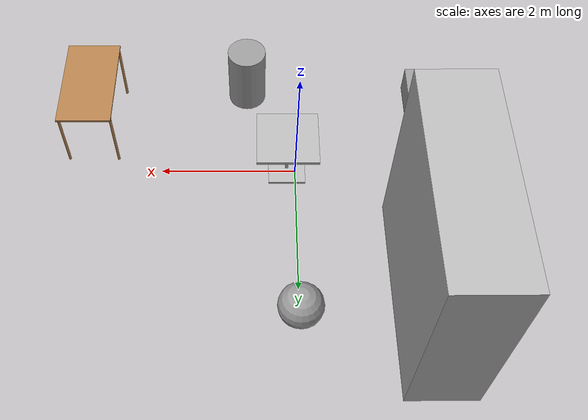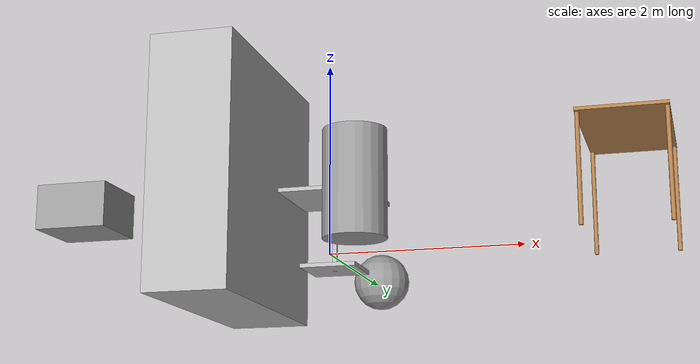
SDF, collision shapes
<?xml version='1.0'?>
<sdf version='1.7'>
  <model name='Obstacle'>
    <link name='link_0'>
      <inertial>
        <mass>0.340599</mass>
        <inertia>
          <ixx>0.0356337</ixx>
          <ixy>0</ixy>
          <ixz>0</ixz>
          <iyy>0.0356337</iyy>
          <iyz>0</iyz>
          <izz>0.0145009</izz>
        </inertia>
        <pose>0 0 0 0 -0 0</pose>
      </inertial>
      <pose>0.72978 -1.70453 0.282461 0 -0 0</pose>
      <visual name='visual'>
        <pose>0 0 0 0 -0 0</pose>
        <geometry>
          <cylinder>
            <radius>0.291804</radius>
            <length>1</length>
          </cylinder>
        </geometry>
        <material>
          <lighting>1</lighting>
          <script>
            <uri>file://media/materials/scripts/gazebo.material</uri>
            <name>Gazebo/Grey</name>
          </script>
          <shader type='pixel'/>
        </material>
        <transparency>0</transparency>
        <cast_shadows>1</cast_shadows>
      </visual>
      <collision name='collision'>
        <laser_retro>0</laser_retro>
        <max_contacts>10</max_contacts>
        <pose>0 0 0 0 -0 0</pose>
        <geometry>
          <cylinder>
            <radius>0.291804</radius>
            <length>1</length>
          </cylinder>
        </geometry>
        <surface>
          <friction>
            <ode>
              <mu>1</mu>
              <mu2>1</mu2>
              <fdir1>0 0 0</fdir1>
              <slip1>0</slip1>
              <slip2>0</slip2>
            </ode>
            <torsional>
              <coefficient>1</coefficient>
              <patch_radius>0</patch_radius>
              <surface_radius>0</surface_radius>
              <use_patch_radius>1</use_patch_radius>
              <ode>
                <slip>0</slip>
              </ode>
            </torsional>
          </friction>
          <bounce>
            <restitution_coefficient>0</restitution_coefficient>
            <threshold>1e+06</threshold>
          </bounce>
          <contact>
            <collide_without_contact>0</collide_without_contact>
            <collide_without_contact_bitmask>1</collide_without_contact_bitmask>
            <collide_bitmask>1</collide_bitmask>
            <ode>
              <soft_cfm>0</soft_cfm>
              <soft_erp>0.2</soft_erp>
              <kp>1e+13</kp>
              <kd>1</kd>
              <max_vel>0.01</max_vel>
              <min_depth>0</min_depth>
            </ode>
            <bullet>
              <split_impulse>1</split_impulse>
              <split_impulse_penetration_threshold>-0.01</split_impulse_penetration_threshold>
              <soft_cfm>0</soft_cfm>
              <soft_erp>0.2</soft_erp>
              <kp>1e+13</kp>
              <kd>1</kd>
            </bullet>
          </contact>
        </surface>
      </collision>
    </link>
    <link name='link_1'>
      <inertial>
        <mass>0.204974</mass>
        <inertia>
          <ixx>0.010927</ixx>
          <ixy>0</ixy>
          <ixz>0</ixz>
          <iyy>0.0116614</iyy>
          <iyz>0</iyz>
          <izz>0.0161624</izz>
        </inertia>
        <pose>0 0 0 0 -0 0</pose>
      </inertial>
      <pose>-2.103 -1.27846 0.282461 0 -0 0</pose>
      <visual name='visual'>
        <pose>0 0 0 0 -0 0</pose>
        <geometry>
          <box>
            <size>0.70328 0.672018 0.433706</size>
          </box>
        </geometry>
        <material>
          <lighting>1</lighting>
          <script>
            <uri>file://media/materials/scripts/gazebo.material</uri>
            <name>Gazebo/Grey</name>
          </script>
          <shader type='pixel'/>
        </material>
        <transparency>0</transparency>
        <cast_shadows>1</cast_shadows>
      </visual>
      <collision name='collision'>
        <laser_retro>0</laser_retro>
        <max_contacts>10</max_contacts>
        <pose>0 0 0 0 -0 0</pose>
        <geometry>
          <box>
            <size>0.70328 0.672018 0.433706</size>
          </box>
        </geometry>
        <surface>
          <friction>
            <ode>
              <mu>1</mu>
              <mu2>1</mu2>
              <fdir1>0 0 0</fdir1>
              <slip1>0</slip1>
              <slip2>0</slip2>
            </ode>
            <torsional>
              <coefficient>1</coefficient>
              <patch_radius>0</patch_radius>
              <surface_radius>0</surface_radius>
              <use_patch_radius>1</use_patch_radius>
              <ode>
                <slip>0</slip>
              </ode>
            </torsional>
          </friction>
          <bounce>
            <restitution_coefficient>0</restitution_coefficient>
            <threshold>1e+06</threshold>
          </bounce>
          <contact>
            <collide_without_contact>0</collide_without_contact>
            <collide_without_contact_bitmask>1</collide_without_contact_bitmask>
            <collide_bitmask>1</collide_bitmask>
            <ode>
              <soft_cfm>0</soft_cfm>
              <soft_erp>0.2</soft_erp>
              <kp>1e+13</kp>
              <kd>1</kd>
              <max_vel>0.01</max_vel>
              <min_depth>0</min_depth>
            </ode>
            <bullet>
              <split_impulse>1</split_impulse>
              <split_impulse_penetration_threshold>-0.01</split_impulse_penetration_threshold>
              <soft_cfm>0</soft_cfm>
              <soft_erp>0.2</soft_erp>
              <kp>1e+13</kp>
              <kd>1</kd>
            </bullet>
          </contact>
        </surface>
      </collision>
    </link>
    <link name='link_2'>
      <inertial>
        <mass>0.270121</mass>
        <inertia>
          <ixx>0.0112873</ixx>
          <ixy>0</ixy>
          <ixz>0</ixz>
          <iyy>0.0112873</iyy>
          <iyz>0</iyz>
          <izz>0.0112873</izz>
        </inertia>
        <pose>0 0 0 0 -0 0</pose>
      </inertial>
      <pose>-0.025273 2.27899 0.087693 0 -0 0</pose>
      <visual name='visual'>
        <pose>0 0 0 0 -0 0</pose>
        <geometry>
          <sphere>
            <radius>0.323211</radius>
          </sphere>
        </geometry>
        <material>
          <lighting>1</lighting>
          <script>
            <uri>file://media/materials/scripts/gazebo.material</uri>
            <name>Gazebo/Grey</name>
          </script>
          <shader type='pixel'/>
        </material>
        <transparency>0</transparency>
        <cast_shadows>1</cast_shadows>
      </visual>
      <collision name='collision'>
        <laser_retro>0</laser_retro>
        <max_contacts>10</max_contacts>
        <pose>0 0 0 0 -0 0</pose>
        <geometry>
          <sphere>
            <radius>0.323211</radius>
          </sphere>
        </geometry>
        <surface>
          <friction>
            <ode>
              <mu>1</mu>
              <mu2>1</mu2>
              <fdir1>0 0 0</fdir1>
              <slip1>0</slip1>
              <slip2>0</slip2>
            </ode>
            <torsional>
              <coefficient>1</coefficient>
              <patch_radius>0</patch_radius>
              <surface_radius>0</surface_radius>
              <use_patch_radius>1</use_patch_radius>
              <ode>
                <slip>0</slip>
              </ode>
            </torsional>
          </friction>
          <bounce>
            <restitution_coefficient>0</restitution_coefficient>
            <threshold>1e+06</threshold>
          </bounce>
          <contact>
            <collide_without_contact>0</collide_without_contact>
            <collide_without_contact_bitmask>1</collide_without_contact_bitmask>
            <collide_bitmask>1</collide_bitmask>
            <ode>
              <soft_cfm>0</soft_cfm>
              <soft_erp>0.2</soft_erp>
              <kp>1e+13</kp>
              <kd>1</kd>
              <max_vel>0.01</max_vel>
              <min_depth>0</min_depth>
            </ode>
            <bullet>
              <split_impulse>1</split_impulse>
              <split_impulse_penetration_threshold>-0.01</split_impulse_penetration_threshold>
              <soft_cfm>0</soft_cfm>
              <soft_erp>0.2</soft_erp>
              <kp>1e+13</kp>
              <kd>1</kd>
            </bullet>
          </contact>
        </surface>
      </collision>
    </link>
    <model name='brick_box_3x1x3'>
      <static>1</static>
      <link name='chassis'>
        <pose>0 0 1.5 0 -0 0</pose>
        <collision name='collision'>
          <geometry>
            <box>
              <size>3 1 3</size>
            </box>
          </geometry>
        </collision>
        <visual name='visual'>
          <geometry>
            <mesh>
              <uri>model://brick_box_3x1x3/meshes/simple_box.dae</uri>
              <scale>3 1 3</scale>
            </mesh>
          </geometry>
          <material>
            <script>
              <uri>model://brick_box_3x1x3/materials/scripts</uri>
              <uri>model://brick_box_3x1x3/materials/textures</uri>
              <name>BrickBox/Diffuse</name>
            </script>
          </material>
        </visual>
      </link>
      <pose>-1.81725 2.00035 -0.217539 0 0 -1.56557</pose>
    </model>
    <model name='cafe_table'>
      <static>1</static>
      <link name='link'>
        <collision name='surface'>
          <pose>0 0 0.755 0 -0 0</pose>
          <geometry>
            <box>
              <size>0.913 0.913 0.04</size>
            </box>
          </geometry>
        </collision>
        <collision name='column'>
          <pose>0 0 0.37 0 -0 0</pose>
          <geometry>
            <box>
              <size>0.042 0.042 0.74</size>
            </box>
          </geometry>
        </collision>
        <collision name='base'>
          <pose>0 0 0.02 0 -0 0</pose>
          <geometry>
            <box>
              <size>0.56 0.56 0.04</size>
            </box>
          </geometry>
        </collision>
        <visual name='visual'>
          <geometry>
            <mesh>
              <uri>model://cafe_table/meshes/cafe_table.dae</uri>
            </mesh>
          </geometry>
        </visual>
      </link>
      <pose>0.116043 -0.208686 -0.217539 0 -0 0</pose>
    </model>
    <model name='table'>
      <static>1</static>
      <link name='link'>
        <collision name='surface'>
          <pose>0 0 1 0 -0 0</pose>
          <geometry>
            <box>
              <size>1.5 0.8 0.03</size>
            </box>
          </geometry>
          <surface>
            <friction>
              <ode>
                <mu>0.6</mu>
                <mu2>0.6</mu2>
              </ode>
            </friction>
          </surface>
        </collision>
        <visual name='visual1'>
          <pose>0 0 1 0 -0 0</pose>
          <geometry>
            <box>
              <size>1.5 0.8 0.03</size>
            </box>
          </geometry>
          <material>
            <script>
              <uri>file://media/materials/scripts/gazebo.material</uri>
              <name>Gazebo/Wood</name>
            </script>
          </material>
        </visual>
        <collision name='front_left_leg'>
          <pose>0.68 0.38 0.5 0 -0 0</pose>
          <geometry>
            <cylinder>
              <radius>0.02</radius>
              <length>1</length>
            </cylinder>
          </geometry>
        </collision>
        <visual name='front_left_leg'>
          <pose>0.68 0.38 0.5 0 -0 0</pose>
          <geometry>
            <cylinder>
              <radius>0.02</radius>
              <length>1</length>
            </cylinder>
          </geometry>
          <material>
            <script>
              <uri>file://media/materials/scripts/gazebo.material</uri>
              <name>Gazebo/Grey</name>
            </script>
          </material>
        </visual>
        <collision name='front_right_leg'>
          <pose>0.68 -0.38 0.5 0 -0 0</pose>
          <geometry>
            <cylinder>
              <radius>0.02</radius>
              <length>1</length>
            </cylinder>
          </geometry>
        </collision>
        <visual name='front_right_leg'>
          <pose>0.68 -0.38 0.5 0 -0 0</pose>
          <geometry>
            <cylinder>
              <radius>0.02</radius>
              <length>1</length>
            </cylinder>
          </geometry>
          <material>
            <script>
              <uri>file://media/materials/scripts/gazebo.material</uri>
              <name>Gazebo/Grey</name>
            </script>
          </material>
        </visual>
        <collision name='back_right_leg'>
          <pose>-0.68 -0.38 0.5 0 -0 0</pose>
          <geometry>
            <cylinder>
              <radius>0.02</radius>
              <length>1</length>
            </cylinder>
          </geometry>
        </collision>
        <visual name='back_right_leg'>
          <pose>-0.68 -0.38 0.5 0 -0 0</pose>
          <geometry>
            <cylinder>
              <radius>0.02</radius>
              <length>1</length>
            </cylinder>
          </geometry>
          <material>
            <script>
              <uri>file://media/materials/scripts/gazebo.material</uri>
              <name>Gazebo/Grey</name>
            </script>
          </material>
        </visual>
        <collision name='back_left_leg'>
          <pose>-0.68 0.38 0.5 0 -0 0</pose>
          <geometry>
            <cylinder>
              <radius>0.02</radius>
              <length>1</length>
            </cylinder>
          </geometry>
        </collision>
        <visual name='back_left_leg'>
          <pose>-0.68 0.38 0.5 0 -0 0</pose>
          <geometry>
            <cylinder>
              <radius>0.02</radius>
              <length>1</length>
            </cylinder>
          </geometry>
          <material>
            <script>
              <uri>file://media/materials/scripts/gazebo.material</uri>
              <name>Gazebo/Grey</name>
            </script>
          </material>
        </visual>
      </link>
      <pose>3.0997 -1.08767 -0.217539 0 -0 1.56553</pose>
    </model>
    <static>0</static>
    <allow_auto_disable>1</allow_auto_disable>
  </model>
</sdf>
